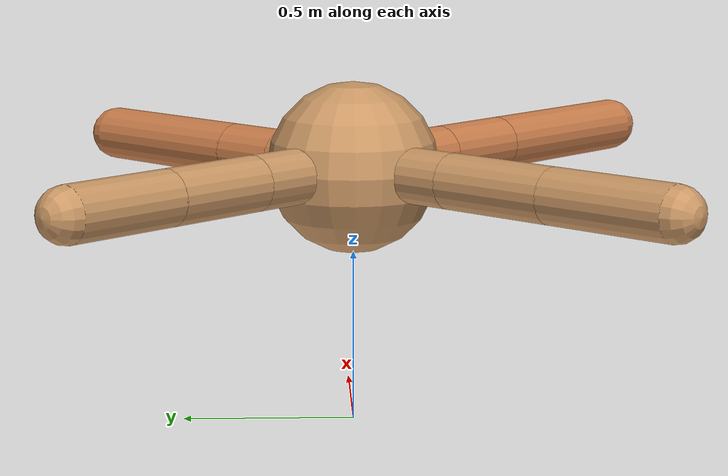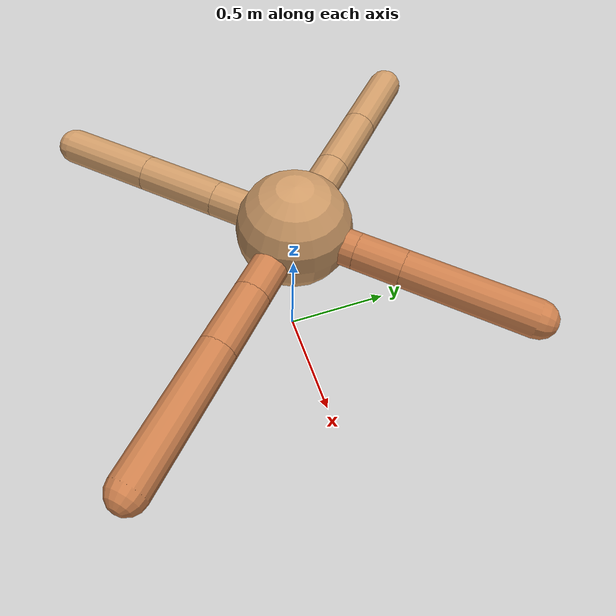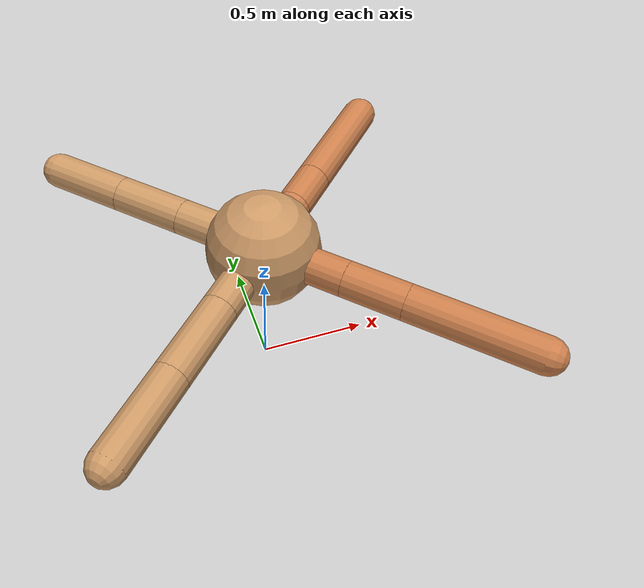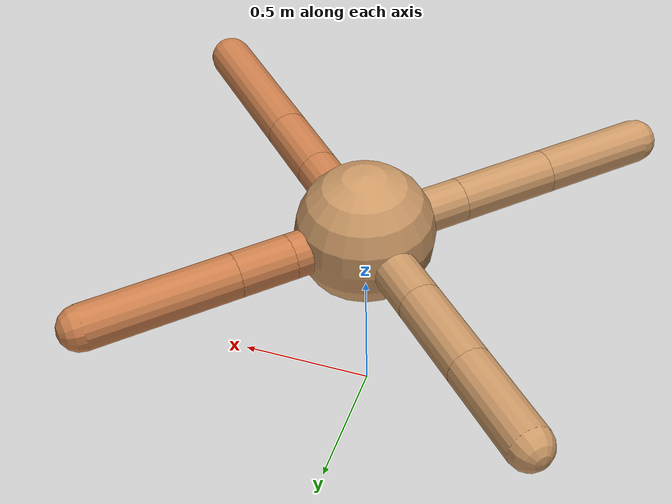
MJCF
<mujoco model="ant">
  <compiler angle="degree" coordinate="local" inertiafromgeom="true" />
  <option integrator="RK4" timestep="0.01" />
  <custom>
    <numeric data="0.0 0.0 0.55 1.0 0.0 0.0 0.0 0.0 1.0 0.0 -1.0 0.0 -1.0 0.0 1.0" name="init_qpos" />
  </custom>
  <default>
    <joint armature="1" damping="1" limited="true" />
    <geom conaffinity="0" condim="3" density="5.0" friction="1.5 0.1 0.1" margin="0.01" rgba="0.8 0.6 0.4 1" />
  </default>
  <worldbody>
    <body name="torso" pos="0 0 0.75">
      <geom name="torso_geom" pos="0 0 0" size="0.25" type="sphere" />

      <body name="front_left_leg" pos="0 0 0">
        <geom fromto="0.0 0.0 0.0 0.20368669171573034 0.20368669171573034 0.0" name="aux_1_geom" size="0.08" type="capsule" rgba=".8 .5 .3 1" />
        <body name="aux_1" pos="0.20368669171573034 0.20368669171573034 0.0">
          <joint axis="0 0 1" name="hip_1" pos="0.0 0.0 0.0" range="-40 40" type="hinge" />
          <geom fromto="0.0 0.0 0.0 0.14223454252254425 0.14223454252254425 0.0" name="left_leg_geom" size="0.08" type="capsule" rgba=".8 .5 .3 1" />
          <body pos="0.14223454252254425 0.14223454252254425 0.0" name="front_left_foot">
            <joint axis="-1 1 0" name="ankle_1" pos="0.0 0.0 0.0" range="30 100" type="hinge" />
            <geom fromto="0.0 0.0 0.0 0.3820249185471394 0.3820249185471394 0.0" name="left_ankle_geom" size="0.08" type="capsule" rgba=".8 .5 .3 1" />
          </body>
        </body>
      </body>
      <body name="front_right_leg" pos="0 0 0">
        <geom fromto="0.0 0.0 0.0 -0.2839544818141867 0.2839544818141867 0.0" name="aux_2_geom" size="0.08" type="capsule" />
        <body name="aux_2" pos="-0.2839544818141867 0.2839544818141867 0.0">
          <joint axis="0 0 1" name="hip_2" pos="0.0 0.0 0.0" range="-40 40" type="hinge" />
          <geom fromto="0.0 0.0 0.0 -0.2263530038476258 0.2263530038476258 0.0" name="right_leg_geom" size="0.08" type="capsule" />
          <body pos="-0.2263530038476258 0.2263530038476258 0.0" name="front_right_foot">
            <joint axis="1 1 0" name="ankle_2" pos="0.0 0.0 0.0" range="-100 -30" type="hinge" />
            <geom fromto="0.0 0.0 0.0 -0.2506129719687706 0.2506129719687706 0.0" name="right_ankle_geom" size="0.08" type="capsule" />
          </body>
        </body>
      </body>
      <body name="left_back_leg" pos="0 0 0">
        <geom fromto="0.0 0.0 0.0 -0.26606371901194875 -0.26606371901194875 0.0" name="aux_3_geom" size="0.08" type="capsule" />
        <body name="aux_3" pos="-0.26606371901194875 -0.26606371901194875 0.0">
          <joint axis="0 0 1" name="hip_3" pos="0.0 0.0 0.0" range="-40 40" type="hinge" />
          <geom fromto="0.0 0.0 0.0 -0.252559412727368 -0.252559412727368 0.0" name="back_leg_geom" size="0.08" type="capsule" />
          <body pos="-0.252559412727368 -0.252559412727368 0.0" name="left_back_foot">
            <joint axis="-1 1 0" name="ankle_3" pos="0.0 0.0 0.0" range="-100 -30" type="hinge" />
            <geom fromto="0.0 0.0 0.0 -0.28848157869553737 -0.28848157869553737 0.0" name="third_ankle_geom" size="0.08" type="capsule" />
          </body>
        </body>
      </body>
      <body name="right_back_leg" pos="0 0 0">
        <geom fromto="0.0 0.0 0.0 0.27291330227496513 -0.27291330227496513 0.0" name="aux_4_geom" size="0.08" type="capsule" rgba=".8 .5 .3 1" />
        <body name="aux_4" pos="0.27291330227496513 -0.27291330227496513 0.0">
          <joint axis="0 0 1" name="hip_4" pos="0.0 0.0 0.0" range="-40 40" type="hinge" />
          <geom fromto="0.0 0.0 0.0 0.1902498247515304 -0.1902498247515304 0.0" name="rightback_leg_geom" size="0.08" type="capsule" rgba=".8 .5 .3 1" />
          <body pos="0.1902498247515304 -0.1902498247515304 0.0" name="right_back_foot">
            <joint axis="1 1 0" name="ankle_4" pos="0.0 0.0 0.0" range="30 100" type="hinge" />
            <geom fromto="0.0 0.0 0.0 0.40382403865209815 -0.40382403865209815 0.0" name="fourth_ankle_geom" size="0.08" type="capsule" rgba=".8 .5 .3 1" />
          </body>
        </body>
      </body>
    </body>
  </worldbody>
  <actuator>
    <motor ctrllimited="true" ctrlrange="-1.0 1.0" joint="hip_4" gear="150" />
    <motor ctrllimited="true" ctrlrange="-1.0 1.0" joint="ankle_4" gear="150" />
    <motor ctrllimited="true" ctrlrange="-1.0 1.0" joint="hip_1" gear="150" />
    <motor ctrllimited="true" ctrlrange="-1.0 1.0" joint="ankle_1" gear="150" />
    <motor ctrllimited="true" ctrlrange="-1.0 1.0" joint="hip_2" gear="150" />
    <motor ctrllimited="true" ctrlrange="-1.0 1.0" joint="ankle_2" gear="150" />
    <motor ctrllimited="true" ctrlrange="-1.0 1.0" joint="hip_3" gear="150" />
    <motor ctrllimited="true" ctrlrange="-1.0 1.0" joint="ankle_3" gear="150" />
  </actuator>
</mujoco>
